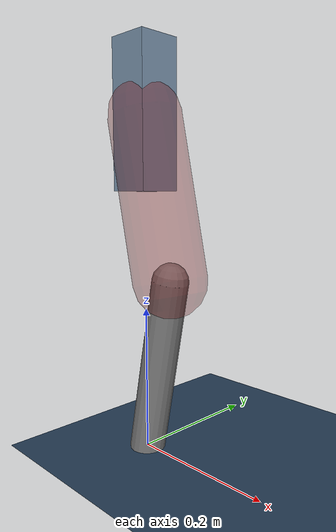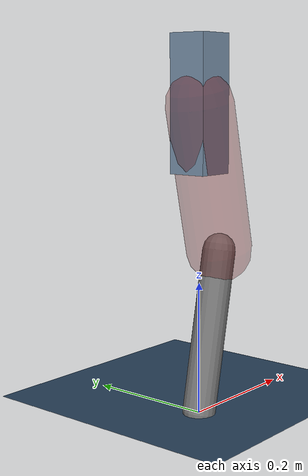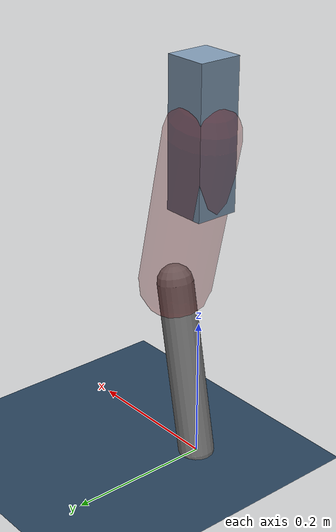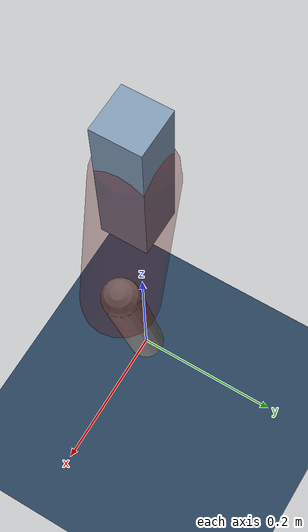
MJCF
<mujoco model="Hopper2D">
	<compiler inertiafromgeom="true" angle="radian" />
	<option timestep="0.001" integrator="implicit" cone="elliptic" solver="Newton" tolerance="1e-10" />

	<default>
		<geom contype="1" conaffinity="1" condim="3" friction="2 0.005 0.0001" solref="0.005 1" />
		<joint limited="true" damping="0.1" />
	</default>

	<asset>
		<texture name="skybox" type="skybox" builtin="gradient" rgb1=".4 .6 .8" rgb2="0 0 0" width="800" height="800" />
		<texture name="grid" type="2d" builtin="checker" rgb1=".1 .2 .3" rgb2=".2 .3 .4" width="300" height="300" mark="edge" markrgb=".2 .3 .4" />
		<material name="ground" texture="grid" texrepeat="1 1" texuniform="true" reflectance="0.1" />
		<material name="leg" rgba="0.5 0.6 0.7 1" />
	</asset>

	<worldbody>

		<geom name="floor" type="plane" size="5 5 0.25" material="ground" />

		<light directional="false" diffuse="0.8 0.8 0.8" specular="0.3 0.3 0.3" pos="0 0 2" dir="0 0 -1" />
		<light mode="targetbodycom" target="base" directional="false" diffuse="0.8 0.8 0.8" specular="0.3 0.3 0.3" pos="0 0 2" dir="0 0 -1" />

		<camera name="fixed" pos="0 -2 1" xyaxes="1 0 0 0 0 1" />
		<camera name="tracking" mode="trackcom" pos="0 -3 1" />

		<body name="root" pos="0 0 0.4627240224636807">
			<joint name="slide_x" type="slide" axis="1 0 0" range="-100 100" />
			<joint name="slide_z" type="slide" axis="0 0 1" range="0 10" />

			<body name="base" pos="0 0 0">
				<geom name="torso" type="box" size="0.03 0.03 0.1" mass="3.531" material="leg" />

				<body name="link1" pos="0 0 0" euler="0 1.3533252116713914 0">
					<joint type="hinge" axis="0 -1 0" pos="0 0 0" name="hinge1" limited="true" range="-3.14 3.14" stiffness="0" damping="0.1" />
					<geom name="thigh" type="capsule" fromto="0 0 0 0.22380310881988152 0 0" size="0.05" rgba="0.5 0 0 0.3" mass="0.7893077720497037" />

					<body name="link2" pos="0.22380310881988152 0 0" euler="0 0.41269813870162375 0">
						<joint type="hinge" axis="0 -1 0" pos="0 0 0" name="hinge2" limited="true" range="-3.14 3.14" stiffness="0" damping="0.1" />
						<geom name="shank" type="capsule" fromto="0 0 0 0.2489209136437992 0 0" size="0.025" mass="0.44163673091503935" />

					</body>
				</body>
			</body>
		</body>
	</worldbody>

	<actuator>
		<motor name="torque1" joint="hinge1" ctrlrange="-115.40175429135937 115.40175429135937" ctrllimited="true" gear="1" />
		<motor name="torque2" joint="hinge2" ctrlrange="-141.19321557135248 141.19321557135248" ctrllimited="true" gear="1" />
	</actuator>
</mujoco>
